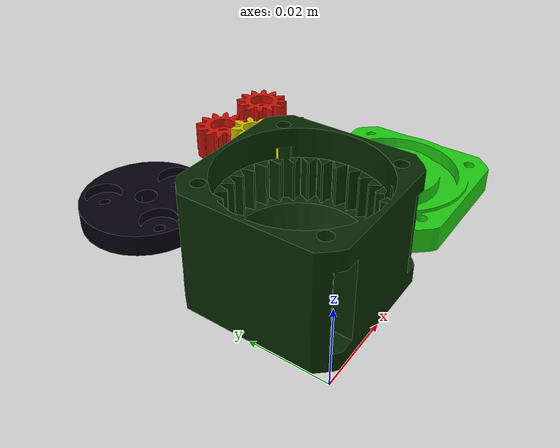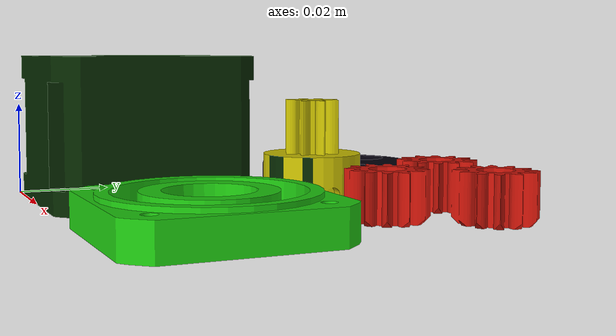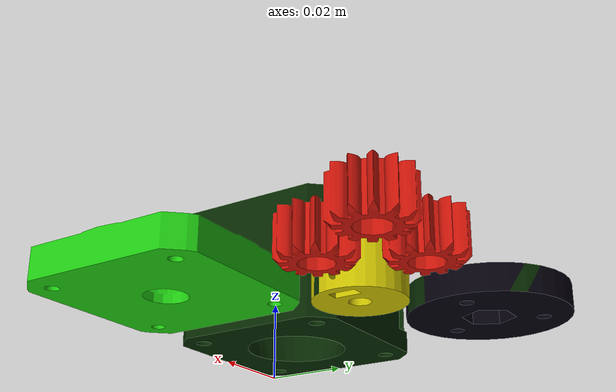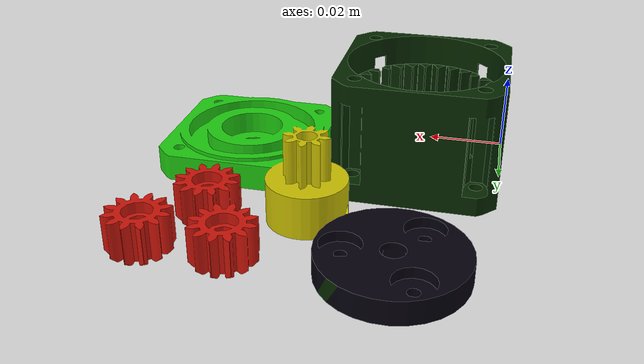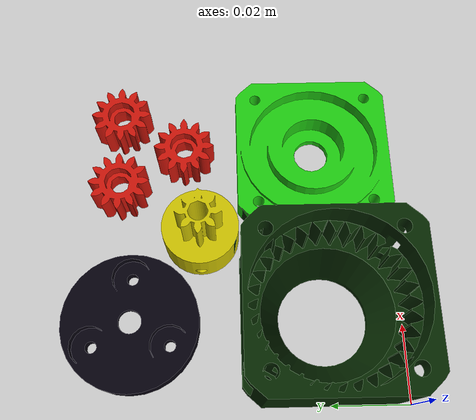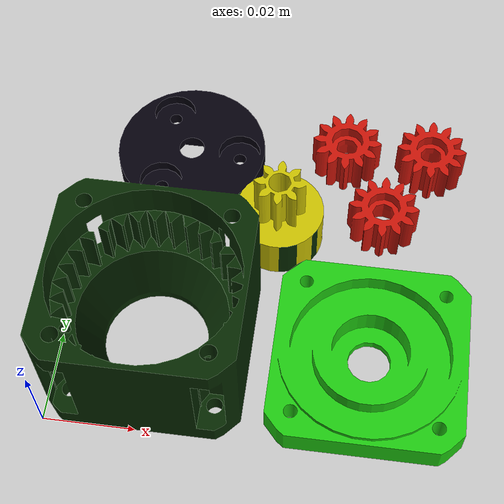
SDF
<?xml version="1.0" ?>
<sdf version="1.5">
  <model name="speed_reducer_single_print">
    <static>false</static>
    <link name="link">
      <collision name="collision">
        <geometry>
          <mesh>
            <scale>1 1 1</scale>
            <uri>model://speed_reducer_single_print/meshes/speed_reducer_single_print.stl</uri>
          </mesh>
        </geometry>
      </collision>
      <visual name="visual">
        <geometry>
          <mesh>
            <scale>1 1 1</scale>
            <uri>model://speed_reducer_single_print/meshes/speed_reducer_single_print.dae</uri>
          </mesh>
        </geometry>
      </visual>
    </link>
  </model>
</sdf>
